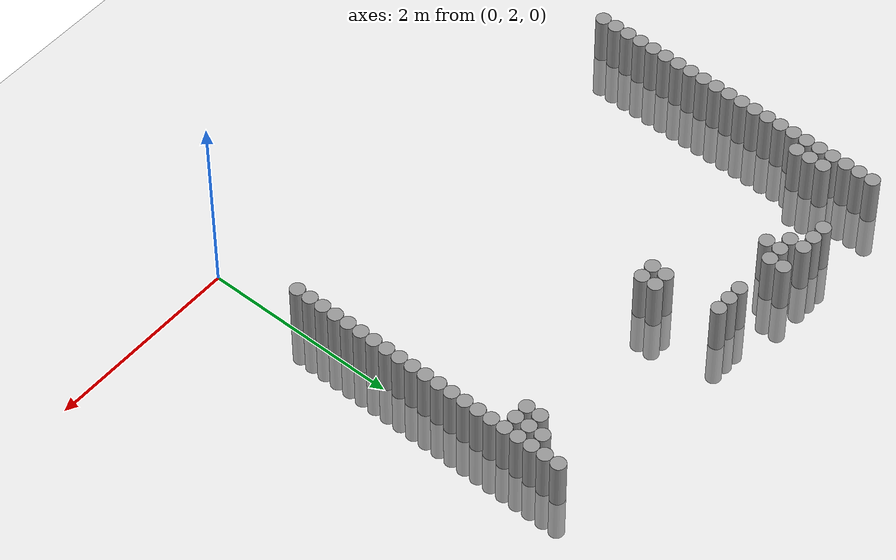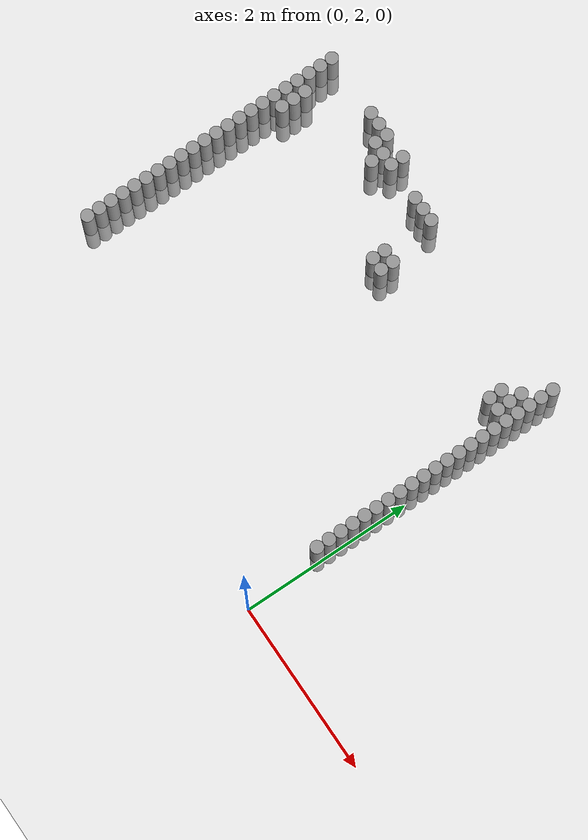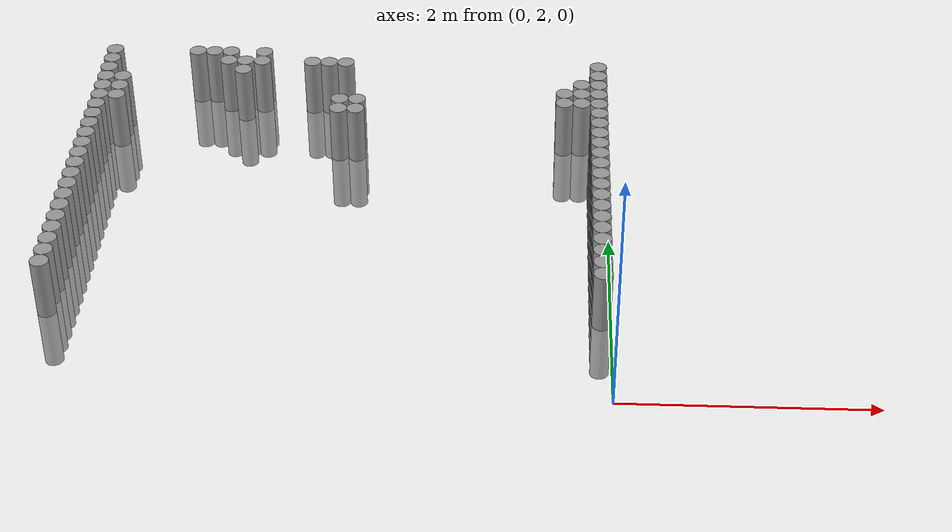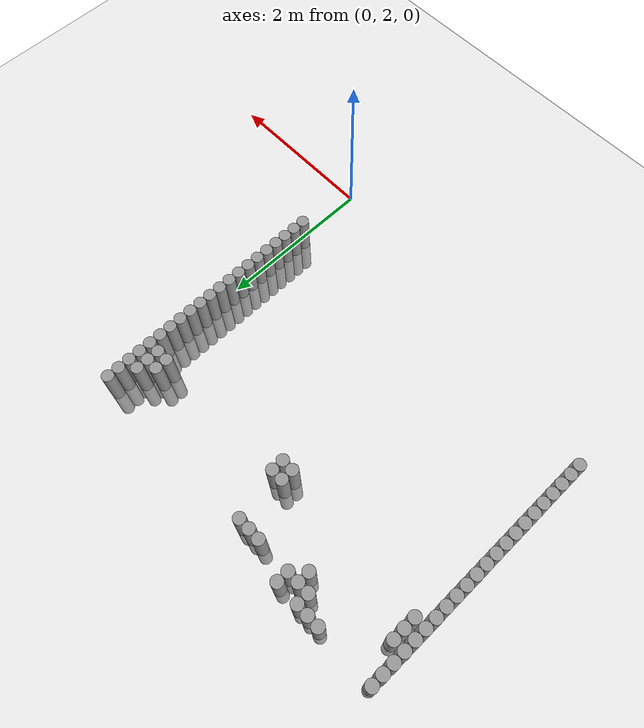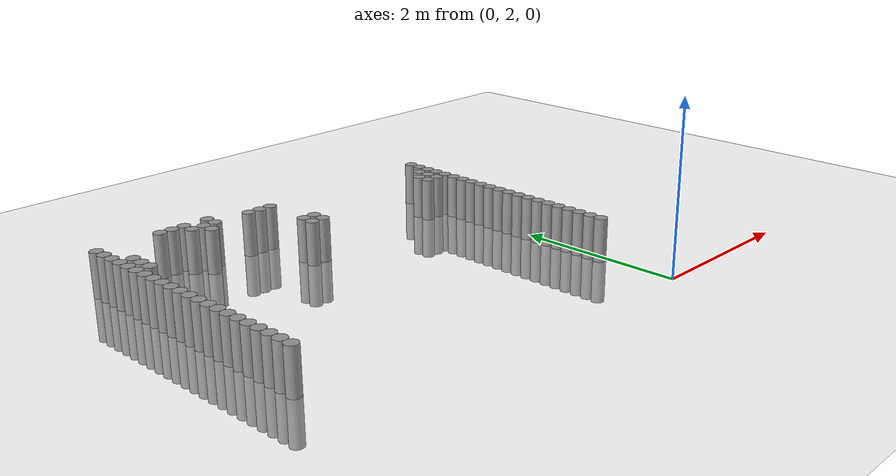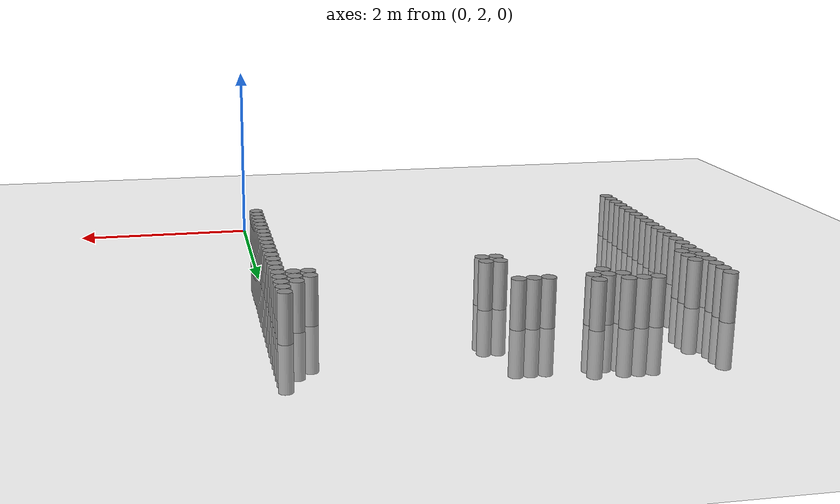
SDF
<sdf version="1.6">
 <world name="default">
  <model name="ground_plane">
   <static>1</static>
   <link name="link">
    <collision name="collision">
     <geometry><plane><normal>0 0 1</normal><size>100 100</size></plane></geometry>
     <surface><friction><ode><mu>100</mu><mu2>50</mu2></ode></friction></surface>
    </collision>
    <visual name="visual">
     <cast_shadows>0</cast_shadows>
     <geometry><plane><normal>0 0 1</normal><size>100 100</size></plane></geometry>
     <material>
      <script><uri>file://media/materials/scripts/gazebo.material</uri><name>Gazebo/Grey</name></script>
     </material>
    </visual>
   </link>
  </model>
  <model name="unit_cylinder_66">
   <pose>-0.075000 2.925000 0.000000 0.000000 0.000000 0.000000</pose>
   <link name="link">
    <inertial>
     <mass>1</mass>
     <inertia><ixx>0.145833</ixx><ixy>0</ixy><ixz>0</ixz><iyy>0.145833</iyy><iyz>0</iyz><izz>0.125</izz></inertia>
    </inertial>
    <collision name="collision">
     <geometry><cylinder><radius>0.075000</radius><length>1</length></cylinder></geometry>
    </collision>
    <visual name="visual">
     <geometry><cylinder><radius>0.075000</radius><length>1</length></cylinder></geometry>
     <material>
      <script><name>Gazebo/Grey</name><uri>file://media/materials/scripts/gazebo.material</uri></script>
     </material>
    </visual>
   </link>
  </model>
  <model name="unit_cylinder_67">
   <pose>-4.425000 2.925000 0.000000 0.000000 0.000000 0.000000</pose>
   <link name="link">
    <inertial>
     <mass>1</mass>
     <inertia><ixx>0.145833</ixx><ixy>0</ixy><ixz>0</ixz><iyy>0.145833</iyy><iyz>0</iyz><izz>0.125</izz></inertia>
    </inertial>
    <collision name="collision">
     <geometry><cylinder><radius>0.075000</radius><length>1</length></cylinder></geometry>
    </collision>
    <visual name="visual">
     <geometry><cylinder><radius>0.075000</radius><length>1</length></cylinder></geometry>
     <material>
      <script><name>Gazebo/Grey</name><uri>file://media/materials/scripts/gazebo.material</uri></script>
     </material>
    </visual>
   </link>
  </model>
  <model name="unit_cylinder_68">
   <pose>-0.075000 3.075000 0.000000 0.000000 0.000000 0.000000</pose>
   <link name="link">
    <inertial>
     <mass>1</mass>
     <inertia><ixx>0.145833</ixx><ixy>0</ixy><ixz>0</ixz><iyy>0.145833</iyy><iyz>0</iyz><izz>0.125</izz></inertia>
    </inertial>
    <collision name="collision">
     <geometry><cylinder><radius>0.075000</radius><length>1</length></cylinder></geometry>
    </collision>
    <visual name="visual">
     <geometry><cylinder><radius>0.075000</radius><length>1</length></cylinder></geometry>
     <material>
      <script><name>Gazebo/Grey</name><uri>file://media/materials/scripts/gazebo.material</uri></script>
     </material>
    </visual>
   </link>
  </model>
  <model name="unit_cylinder_69">
   <pose>-4.425000 3.075000 0.000000 0.000000 0.000000 0.000000</pose>
   <link name="link">
    <inertial>
     <mass>1</mass>
     <inertia><ixx>0.145833</ixx><ixy>0</ixy><ixz>0</ixz><iyy>0.145833</iyy><iyz>0</iyz><izz>0.125</izz></inertia>
    </inertial>
    <collision name="collision">
     <geometry><cylinder><radius>0.075000</radius><length>1</length></cylinder></geometry>
    </collision>
    <visual name="visual">
     <geometry><cylinder><radius>0.075000</radius><length>1</length></cylinder></geometry>
     <material>
      <script><name>Gazebo/Grey</name><uri>file://media/materials/scripts/gazebo.material</uri></script>
     </material>
    </visual>
   </link>
  </model>
  <model name="unit_cylinder_70">
   <pose>-0.075000 3.225000 0.000000 0.000000 0.000000 0.000000</pose>
   <link name="link">
    <inertial>
     <mass>1</mass>
     <inertia><ixx>0.145833</ixx><ixy>0</ixy><ixz>0</ixz><iyy>0.145833</iyy><iyz>0</iyz><izz>0.125</izz></inertia>
    </inertial>
    <collision name="collision">
     <geometry><cylinder><radius>0.075000</radius><length>1</length></cylinder></geometry>
    </collision>
    <visual name="visual">
     <geometry><cylinder><radius>0.075000</radius><length>1</length></cylinder></geometry>
     <material>
      <script><name>Gazebo/Grey</name><uri>file://media/materials/scripts/gazebo.material</uri></script>
     </material>
    </visual>
   </link>
  </model>
  <model name="unit_cylinder_71">
   <pose>-4.425000 3.225000 0.000000 0.000000 0.000000 0.000000</pose>
   <link name="link">
    <inertial>
     <mass>1</mass>
     <inertia><ixx>0.145833</ixx><ixy>0</ixy><ixz>0</ixz><iyy>0.145833</iyy><iyz>0</iyz><izz>0.125</izz></inertia>
    </inertial>
    <collision name="collision">
     <geometry><cylinder><radius>0.075000</radius><length>1</length></cylinder></geometry>
    </collision>
    <visual name="visual">
     <geometry><cylinder><radius>0.075000</radius><length>1</length></cylinder></geometry>
     <material>
      <script><name>Gazebo/Grey</name><uri>file://media/materials/scripts/gazebo.material</uri></script>
     </material>
    </visual>
   </link>
  </model>
  <model name="unit_cylinder_72">
   <pose>-0.075000 3.375000 0.000000 0.000000 0.000000 0.000000</pose>
   <link name="link">
    <inertial>
     <mass>1</mass>
     <inertia><ixx>0.145833</ixx><ixy>0</ixy><ixz>0</ixz><iyy>0.145833</iyy><iyz>0</iyz><izz>0.125</izz></inertia>
    </inertial>
    <collision name="collision">
     <geometry><cylinder><radius>0.075000</radius><length>1</length></cylinder></geometry>
    </collision>
    <visual name="visual">
     <geometry><cylinder><radius>0.075000</radius><length>1</length></cylinder></geometry>
     <material>
      <script><name>Gazebo/Grey</name><uri>file://media/materials/scripts/gazebo.material</uri></script>
     </material>
    </visual>
   </link>
  </model>
  <model name="unit_cylinder_73">
   <pose>-4.425000 3.375000 0.000000 0.000000 0.000000 0.000000</pose>
   <link name="link">
    <inertial>
     <mass>1</mass>
     <inertia><ixx>0.145833</ixx><ixy>0</ixy><ixz>0</ixz><iyy>0.145833</iyy><iyz>0</iyz><izz>0.125</izz></inertia>
    </inertial>
    <collision name="collision">
     <geometry><cylinder><radius>0.075000</radius><length>1</length></cylinder></geometry>
    </collision>
    <visual name="visual">
     <geometry><cylinder><radius>0.075000</radius><length>1</length></cylinder></geometry>
     <material>
      <script><name>Gazebo/Grey</name><uri>file://media/materials/scripts/gazebo.material</uri></script>
     </material>
    </visual>
   </link>
  </model>
  <model name="unit_cylinder_74">
   <pose>-0.075000 3.525000 0.000000 0.000000 0.000000 0.000000</pose>
   <link name="link">
    <inertial>
     <mass>1</mass>
     <inertia><ixx>0.145833</ixx><ixy>0</ixy><ixz>0</ixz><iyy>0.145833</iyy><iyz>0</iyz><izz>0.125</izz></inertia>
    </inertial>
    <collision name="collision">
     <geometry><cylinder><radius>0.075000</radius><length>1</length></cylinder></geometry>
    </collision>
    <visual name="visual">
     <geometry><cylinder><radius>0.075000</radius><length>1</length></cylinder></geometry>
     <material>
      <script><name>Gazebo/Grey</name><uri>file://media/materials/scripts/gazebo.material</uri></script>
     </material>
    </visual>
   </link>
  </model>
  <model name="unit_cylinder_75">
   <pose>-4.425000 3.525000 0.000000 0.000000 0.000000 0.000000</pose>
   <link name="link">
    <inertial>
     <mass>1</mass>
     <inertia><ixx>0.145833</ixx><ixy>0</ixy><ixz>0</ixz><iyy>0.145833</iyy><iyz>0</iyz><izz>0.125</izz></inertia>
    </inertial>
    <collision name="collision">
     <geometry><cylinder><radius>0.075000</radius><length>1</length></cylinder></geometry>
    </collision>
    <visual name="visual">
     <geometry><cylinder><radius>0.075000</radius><length>1</length></cylinder></geometry>
     <material>
      <script><name>Gazebo/Grey</name><uri>file://media/materials/scripts/gazebo.material</uri></script>
     </material>
    </visual>
   </link>
  </model>
  <model name="unit_cylinder_76">
   <pose>-0.075000 3.675000 0.000000 0.000000 0.000000 0.000000</pose>
   <link name="link">
    <inertial>
     <mass>1</mass>
     <inertia><ixx>0.145833</ixx><ixy>0</ixy><ixz>0</ixz><iyy>0.145833</iyy><iyz>0</iyz><izz>0.125</izz></inertia>
    </inertial>
    <collision name="collision">
     <geometry><cylinder><radius>0.075000</radius><length>1</length></cylinder></geometry>
    </collision>
    <visual name="visual">
     <geometry><cylinder><radius>0.075000</radius><length>1</length></cylinder></geometry>
     <material>
      <script><name>Gazebo/Grey</name><uri>file://media/materials/scripts/gazebo.material</uri></script>
     </material>
    </visual>
   </link>
  </model>
  <model name="unit_cylinder_77">
   <pose>-4.425000 3.675000 0.000000 0.000000 0.000000 0.000000</pose>
   <link name="link">
    <inertial>
     <mass>1</mass>
     <inertia><ixx>0.145833</ixx><ixy>0</ixy><ixz>0</ixz><iyy>0.145833</iyy><iyz>0</iyz><izz>0.125</izz></inertia>
    </inertial>
    <collision name="collision">
     <geometry><cylinder><radius>0.075000</radius><length>1</length></cylinder></geometry>
    </collision>
    <visual name="visual">
     <geometry><cylinder><radius>0.075000</radius><length>1</length></cylinder></geometry>
     <material>
      <script><name>Gazebo/Grey</name><uri>file://media/materials/scripts/gazebo.material</uri></script>
     </material>
    </visual>
   </link>
  </model>
  <model name="unit_cylinder_78">
   <pose>-0.075000 3.825000 0.000000 0.000000 0.000000 0.000000</pose>
   <link name="link">
    <inertial>
     <mass>1</mass>
     <inertia><ixx>0.145833</ixx><ixy>0</ixy><ixz>0</ixz><iyy>0.145833</iyy><iyz>0</iyz><izz>0.125</izz></inertia>
    </inertial>
    <collision name="collision">
     <geometry><cylinder><radius>0.075000</radius><length>1</length></cylinder></geometry>
    </collision>
    <visual name="visual">
     <geometry><cylinder><radius>0.075000</radius><length>1</length></cylinder></geometry>
     <material>
      <script><name>Gazebo/Grey</name><uri>file://media/materials/scripts/gazebo.material</uri></script>
     </material>
    </visual>
   </link>
  </model>
  <model name="unit_cylinder_79">
   <pose>-4.425000 3.825000 0.000000 0.000000 0.000000 0.000000</pose>
   <link name="link">
    <inertial>
     <mass>1</mass>
     <inertia><ixx>0.145833</ixx><ixy>0</ixy><ixz>0</ixz><iyy>0.145833</iyy><iyz>0</iyz><izz>0.125</izz></inertia>
    </inertial>
    <collision name="collision">
     <geometry><cylinder><radius>0.075000</radius><length>1</length></cylinder></geometry>
    </collision>
    <visual name="visual">
     <geometry><cylinder><radius>0.075000</radius><length>1</length></cylinder></geometry>
     <material>
      <script><name>Gazebo/Grey</name><uri>file://media/materials/scripts/gazebo.material</uri></script>
     </material>
    </visual>
   </link>
  </model>
  <model name="unit_cylinder_80">
   <pose>-0.075000 3.975000 0.000000 0.000000 0.000000 0.000000</pose>
   <link name="link">
    <inertial>
     <mass>1</mass>
     <inertia><ixx>0.145833</ixx><ixy>0</ixy><ixz>0</ixz><iyy>0.145833</iyy><iyz>0</iyz><izz>0.125</izz></inertia>
    </inertial>
    <collision name="collision">
     <geometry><cylinder><radius>0.075000</radius><length>1</length></cylinder></geometry>
    </collision>
    <visual name="visual">
     <geometry><cylinder><radius>0.075000</radius><length>1</length></cylinder></geometry>
     <material>
      <script><name>Gazebo/Grey</name><uri>file://media/materials/scripts/gazebo.material</uri></script>
     </material>
    </visual>
   </link>
  </model>
  <model name="unit_cylinder_81">
   <pose>-4.425000 3.975000 0.000000 0.000000 0.000000 0.000000</pose>
   <link name="link">
    <inertial>
     <mass>1</mass>
     <inertia><ixx>0.145833</ixx><ixy>0</ixy><ixz>0</ixz><iyy>0.145833</iyy><iyz>0</iyz><izz>0.125</izz></inertia>
    </inertial>
    <collision name="collision">
     <geometry><cylinder><radius>0.075000</radius><length>1</length></cylinder></geometry>
    </collision>
    <visual name="visual">
     <geometry><cylinder><radius>0.075000</radius><length>1</length></cylinder></geometry>
     <material>
      <script><name>Gazebo/Grey</name><uri>file://media/materials/scripts/gazebo.material</uri></script>
     </material>
    </visual>
   </link>
  </model>
  <model name="unit_cylinder_82">
   <pose>-0.075000 4.125000 0.000000 0.000000 0.000000 0.000000</pose>
   <link name="link">
    <inertial>
     <mass>1</mass>
     <inertia><ixx>0.145833</ixx><ixy>0</ixy><ixz>0</ixz><iyy>0.145833</iyy><iyz>0</iyz><izz>0.125</izz></inertia>
    </inertial>
    <collision name="collision">
     <geometry><cylinder><radius>0.075000</radius><length>1</length></cylinder></geometry>
    </collision>
    <visual name="visual">
     <geometry><cylinder><radius>0.075000</radius><length>1</length></cylinder></geometry>
     <material>
      <script><name>Gazebo/Grey</name><uri>file://media/materials/scripts/gazebo.material</uri></script>
     </material>
    </visual>
   </link>
  </model>
  <model name="unit_cylinder_83">
   <pose>-4.425000 4.125000 0.000000 0.000000 0.000000 0.000000</pose>
   <link name="link">
    <inertial>
     <mass>1</mass>
     <inertia><ixx>0.145833</ixx><ixy>0</ixy><ixz>0</ixz><iyy>0.145833</iyy><iyz>0</iyz><izz>0.125</izz></inertia>
    </inertial>
    <collision name="collision">
     <geometry><cylinder><radius>0.075000</radius><length>1</length></cylinder></geometry>
    </collision>
    <visual name="visual">
     <geometry><cylinder><radius>0.075000</radius><length>1</length></cylinder></geometry>
     <material>
      <script><name>Gazebo/Grey</name><uri>file://media/materials/scripts/gazebo.material</uri></script>
     </material>
    </visual>
   </link>
  </model>
  <model name="unit_cylinder_84">
   <pose>-0.075000 4.275000 0.000000 0.000000 0.000000 0.000000</pose>
   <link name="link">
    <inertial>
     <mass>1</mass>
     <inertia><ixx>0.145833</ixx><ixy>0</ixy><ixz>0</ixz><iyy>0.145833</iyy><iyz>0</iyz><izz>0.125</izz></inertia>
    </inertial>
    <collision name="collision">
     <geometry><cylinder><radius>0.075000</radius><length>1</length></cylinder></geometry>
    </collision>
    <visual name="visual">
     <geometry><cylinder><radius>0.075000</radius><length>1</length></cylinder></geometry>
     <material>
      <script><name>Gazebo/Grey</name><uri>file://media/materials/scripts/gazebo.material</uri></script>
     </material>
    </visual>
   </link>
  </model>
  <model name="unit_cylinder_85">
   <pose>-4.425000 4.275000 0.000000 0.000000 0.000000 0.000000</pose>
   <link name="link">
    <inertial>
     <mass>1</mass>
     <inertia><ixx>0.145833</ixx><ixy>0</ixy><ixz>0</ixz><iyy>0.145833</iyy><iyz>0</iyz><izz>0.125</izz></inertia>
    </inertial>
    <collision name="collision">
     <geometry><cylinder><radius>0.075000</radius><length>1</length></cylinder></geometry>
    </collision>
    <visual name="visual">
     <geometry><cylinder><radius>0.075000</radius><length>1</length></cylinder></geometry>
     <material>
      <script><name>Gazebo/Grey</name><uri>file://media/materials/scripts/gazebo.material</uri></script>
     </material>
    </visual>
   </link>
  </model>
  <model name="unit_cylinder_86">
   <pose>-0.075000 4.425000 0.000000 0.000000 0.000000 0.000000</pose>
   <link name="link">
    <inertial>
     <mass>1</mass>
     <inertia><ixx>0.145833</ixx><ixy>0</ixy><ixz>0</ixz><iyy>0.145833</iyy><iyz>0</iyz><izz>0.125</izz></inertia>
    </inertial>
    <collision name="collision">
     <geometry><cylinder><radius>0.075000</radius><length>1</length></cylinder></geometry>
    </collision>
    <visual name="visual">
     <geometry><cylinder><radius>0.075000</radius><length>1</length></cylinder></geometry>
     <material>
      <script><name>Gazebo/Grey</name><uri>file://media/materials/scripts/gazebo.material</uri></script>
     </material>
    </visual>
   </link>
  </model>
  <model name="unit_cylinder_87">
   <pose>-4.425000 4.425000 0.000000 0.000000 0.000000 0.000000</pose>
   <link name="link">
    <inertial>
     <mass>1</mass>
     <inertia><ixx>0.145833</ixx><ixy>0</ixy><ixz>0</ixz><iyy>0.145833</iyy><iyz>0</iyz><izz>0.125</izz></inertia>
    </inertial>
    <collision name="collision">
     <geometry><cylinder><radius>0.075000</radius><length>1</length></cylinder></geometry>
    </collision>
    <visual name="visual">
     <geometry><cylinder><radius>0.075000</radius><length>1</length></cylinder></geometry>
     <material>
      <script><name>Gazebo/Grey</name><uri>file://media/materials/scripts/gazebo.material</uri></script>
     </material>
    </visual>
   </link>
  </model>
  <model name="unit_cylinder_88">
   <pose>-0.075000 4.575000 0.000000 0.000000 0.000000 0.000000</pose>
   <link name="link">
    <inertial>
     <mass>1</mass>
     <inertia><ixx>0.145833</ixx><ixy>0</ixy><ixz>0</ixz><iyy>0.145833</iyy><iyz>0</iyz><izz>0.125</izz></inertia>
    </inertial>
    <collision name="collision">
     <geometry><cylinder><radius>0.075000</radius><length>1</length></cylinder></geometry>
    </collision>
    <visual name="visual">
     <geometry><cylinder><radius>0.075000</radius><length>1</length></cylinder></geometry>
     <material>
      <script><name>Gazebo/Grey</name><uri>file://media/materials/scripts/gazebo.material</uri></script>
     </material>
    </visual>
   </link>
  </model>
  <model name="unit_cylinder_89">
   <pose>-4.425000 4.575000 0.000000 0.000000 0.000000 0.000000</pose>
   <link name="link">
    <inertial>
     <mass>1</mass>
     <inertia><ixx>0.145833</ixx><ixy>0</ixy><ixz>0</ixz><iyy>0.145833</iyy><iyz>0</iyz><izz>0.125</izz></inertia>
    </inertial>
    <collision name="collision">
     <geometry><cylinder><radius>0.075000</radius><length>1</length></cylinder></geometry>
    </collision>
    <visual name="visual">
     <geometry><cylinder><radius>0.075000</radius><length>1</length></cylinder></geometry>
     <material>
      <script><name>Gazebo/Grey</name><uri>file://media/materials/scripts/gazebo.material</uri></script>
     </material>
    </visual>
   </link>
  </model>
  <model name="unit_cylinder_90">
   <pose>-0.075000 4.725000 0.000000 0.000000 0.000000 0.000000</pose>
   <link name="link">
    <inertial>
     <mass>1</mass>
     <inertia><ixx>0.145833</ixx><ixy>0</ixy><ixz>0</ixz><iyy>0.145833</iyy><iyz>0</iyz><izz>0.125</izz></inertia>
    </inertial>
    <collision name="collision">
     <geometry><cylinder><radius>0.075000</radius><length>1</length></cylinder></geometry>
    </collision>
    <visual name="visual">
     <geometry><cylinder><radius>0.075000</radius><length>1</length></cylinder></geometry>
     <material>
      <script><name>Gazebo/Grey</name><uri>file://media/materials/scripts/gazebo.material</uri></script>
     </material>
    </visual>
   </link>
  </model>
  <model name="unit_cylinder_91">
   <pose>-4.425000 4.725000 0.000000 0.000000 0.000000 0.000000</pose>
   <link name="link">
    <inertial>
     <mass>1</mass>
     <inertia><ixx>0.145833</ixx><ixy>0</ixy><ixz>0</ixz><iyy>0.145833</iyy><iyz>0</iyz><izz>0.125</izz></inertia>
    </inertial>
    <collision name="collision">
     <geometry><cylinder><radius>0.075000</radius><length>1</length></cylinder></geometry>
    </collision>
    <visual name="visual">
     <geometry><cylinder><radius>0.075000</radius><length>1</length></cylinder></geometry>
     <material>
      <script><name>Gazebo/Grey</name><uri>file://media/materials/scripts/gazebo.material</uri></script>
     </material>
    </visual>
   </link>
  </model>
  <model name="unit_cylinder_92">
   <pose>-0.075000 4.875000 0.000000 0.000000 0.000000 0.000000</pose>
   <link name="link">
    <inertial>
     <mass>1</mass>
     <inertia><ixx>0.145833</ixx><ixy>0</ixy><ixz>0</ixz><iyy>0.145833</iyy><iyz>0</iyz><izz>0.125</izz></inertia>
    </inertial>
    <collision name="collision">
     <geometry><cylinder><radius>0.075000</radius><length>1</length></cylinder></geometry>
    </collision>
    <visual name="visual">
     <geometry><cylinder><radius>0.075000</radius><length>1</length></cylinder></geometry>
     <material>
      <script><name>Gazebo/Grey</name><uri>file://media/materials/scripts/gazebo.material</uri></script>
     </material>
    </visual>
   </link>
  </model>
  <model name="unit_cylinder_93">
   <pose>-4.425000 4.875000 0.000000 0.000000 0.000000 0.000000</pose>
   <link name="link">
    <inertial>
     <mass>1</mass>
     <inertia><ixx>0.145833</ixx><ixy>0</ixy><ixz>0</ixz><iyy>0.145833</iyy><iyz>0</iyz><izz>0.125</izz></inertia>
    </inertial>
    <collision name="collision">
     <geometry><cylinder><radius>0.075000</radius><length>1</length></cylinder></geometry>
    </collision>
    <visual name="visual">
     <geometry><cylinder><radius>0.075000</radius><length>1</length></cylinder></geometry>
     <material>
      <script><name>Gazebo/Grey</name><uri>file://media/materials/scripts/gazebo.material</uri></script>
     </material>
    </visual>
   </link>
  </model>
  <model name="unit_cylinder_94">
   <pose>-0.075000 5.025000 0.000000 0.000000 0.000000 0.000000</pose>
   <link name="link">
    <inertial>
     <mass>1</mass>
     <inertia><ixx>0.145833</ixx><ixy>0</ixy><ixz>0</ixz><iyy>0.145833</iyy><iyz>0</iyz><izz>0.125</izz></inertia>
    </inertial>
    <collision name="collision">
     <geometry><cylinder><radius>0.075000</radius><length>1</length></cylinder></geometry>
    </collision>
    <visual name="visual">
     <geometry><cylinder><radius>0.075000</radius><length>1</length></cylinder></geometry>
     <material>
      <script><name>Gazebo/Grey</name><uri>file://media/materials/scripts/gazebo.material</uri></script>
     </material>
    </visual>
   </link>
  </model>
  <model name="unit_cylinder_95">
   <pose>-4.425000 5.025000 0.000000 0.000000 0.000000 0.000000</pose>
   <link name="link">
    <inertial>
     <mass>1</mass>
     <inertia><ixx>0.145833</ixx><ixy>0</ixy><ixz>0</ixz><iyy>0.145833</iyy><iyz>0</iyz><izz>0.125</izz></inertia>
    </inertial>
    <collision name="collision">
     <geometry><cylinder><radius>0.075000</radius><length>1</length></cylinder></geometry>
    </collision>
    <visual name="visual">
     <geometry><cylinder><radius>0.075000</radius><length>1</length></cylinder></geometry>
     <material>
      <script><name>Gazebo/Grey</name><uri>file://media/materials/scripts/gazebo.material</uri></script>
     </material>
    </visual>
   </link>
  </model>
  <model name="unit_cylinder_96">
   <pose>-4.425000 5.175000 0.000000 0.000000 0.000000 0.000000</pose>
   <link name="link">
    <inertial>
     <mass>1</mass>
     <inertia><ixx>0.145833</ixx><ixy>0</ixy><ixz>0</ixz><iyy>0.145833</iyy><iyz>0</iyz><izz>0.125</izz></inertia>
    </inertial>
    <collision name="collision">
     <geometry><cylinder><radius>0.075000</radius><length>1</length></cylinder></geometry>
    </collision>
    <visual name="visual">
     <geometry><cylinder><radius>0.075000</radius><length>1</length></cylinder></geometry>
     <material>
      <script><name>Gazebo/Grey</name><uri>file://media/materials/scripts/gazebo.material</uri></script>
     </material>
    </visual>
   </link>
  </model>
  <model name="unit_cylinder_97">
   <pose>-4.425000 5.325000 0.000000 0.000000 0.000000 0.000000</pose>
   <link name="link">
    <inertial>
     <mass>1</mass>
     <inertia><ixx>0.145833</ixx><ixy>0</ixy><ixz>0</ixz><iyy>0.145833</iyy><iyz>0</iyz><izz>0.125</izz></inertia>
    </inertial>
    <collision name="collision">
     <geometry><cylinder><radius>0.075000</radius><length>1</length></cylinder></geometry>
    </collision>
    <visual name="visual">
     <geometry><cylinder><radius>0.075000</radius><length>1</length></cylinder></geometry>
     <material>
      <script><name>Gazebo/Grey</name><uri>file://media/materials/scripts/gazebo.material</uri></script>
     </material>
    </visual>
   </link>
  </model>
  <model name="unit_cylinder_98">
   <pose>-4.425000 5.475000 0.000000 0.000000 0.000000 0.000000</pose>
   <link name="link">
    <inertial>
     <mass>1</mass>
     <inertia><ixx>0.145833</ixx><ixy>0</ixy><ixz>0</ixz><iyy>0.145833</iyy><iyz>0</iyz><izz>0.125</izz></inertia>
    </inertial>
    <collision name="collision">
     <geometry><cylinder><radius>0.075000</radius><length>1</length></cylinder></geometry>
    </collision>
    <visual name="visual">
     <geometry><cylinder><radius>0.075000</radius><length>1</length></cylinder></geometry>
     <material>
      <script><name>Gazebo/Grey</name><uri>file://media/materials/scripts/gazebo.material</uri></script>
     </material>
    </visual>
   </link>
  </model>
  <model name="unit_cylinder_99">
   <pose>-4.425000 5.625000 0.000000 0.000000 0.000000 0.000000</pose>
   <link name="link">
    <inertial>
     <mass>1</mass>
     <inertia><ixx>0.145833</ixx><ixy>0</ixy><ixz>0</ixz><iyy>0.145833</iyy><iyz>0</iyz><izz>0.125</izz></inertia>
    </inertial>
    <collision name="collision">
     <geometry><cylinder><radius>0.075000</radius><length>1</length></cylinder></geometry>
    </collision>
    <visual name="visual">
     <geometry><cylinder><radius>0.075000</radius><length>1</length></cylinder></geometry>
     <material>
      <script><name>Gazebo/Grey</name><uri>file://media/materials/scripts/gazebo.material</uri></script>
     </material>
    </visual>
   </link>
  </model>
  <model name="unit_cylinder_100">
   <pose>-4.425000 5.775000 0.000000 0.000000 0.000000 0.000000</pose>
   <link name="link">
    <inertial>
     <mass>1</mass>
     <inertia><ixx>0.145833</ixx><ixy>0</ixy><ixz>0</ixz><iyy>0.145833</iyy><iyz>0</iyz><izz>0.125</izz></inertia>
    </inertial>
    <collision name="collision">
     <geometry><cylinder><radius>0.075000</radius><length>1</length></cylinder></geometry>
    </collision>
    <visual name="visual">
     <geometry><cylinder><radius>0.075000</radius><length>1</length></cylinder></geometry>
     <material>
      <script><name>Gazebo/Grey</name><uri>file://media/materials/scripts/gazebo.material</uri></script>
     </material>
    </visual>
   </link>
  </model>
  <model name="unit_cylinder_101">
   <pose>-4.425000 5.925000 0.000000 0.000000 0.000000 0.000000</pose>
   <link name="link">
    <inertial>
     <mass>1</mass>
     <inertia><ixx>0.145833</ixx><ixy>0</ixy><ixz>0</ixz><iyy>0.145833</iyy><iyz>0</iyz><izz>0.125</izz></inertia>
    </inertial>
    <collision name="collision">
     <geometry><cylinder><radius>0.075000</radius><length>1</length></cylinder></geometry>
    </collision>
    <visual name="visual">
     <geometry><cylinder><radius>0.075000</radius><length>1</length></cylinder></geometry>
     <material>
      <script><name>Gazebo/Grey</name><uri>file://media/materials/scripts/gazebo.material</uri></script>
     </material>
    </visual>
   </link>
  </model>
  <model name="unit_cylinder_102">
   <pose>-4.425000 6.075000 0.000000 0.000000 0.000000 0.000000</pose>
   <link name="link">
    <inertial>
     <mass>1</mass>
     <inertia><ixx>0.145833</ixx><ixy>0</ixy><ixz>0</ixz><iyy>0.145833</iyy><iyz>0</iyz><izz>0.125</izz></inertia>
    </inertial>
    <collision name="collision">
     <geometry><cylinder><radius>0.075000</radius><length>1</length></cylinder></geometry>
    </collision>
    <visual name="visual">
     <geometry><cylinder><radius>0.075000</radius><length>1</length></cylinder></geometry>
     <material>
      <script><name>Gazebo/Grey</name><uri>file://media/materials/scripts/gazebo.material</uri></script>
     </material>
    </visual>
   </link>
  </model>
  <model name="unit_cylinder_126">
   <pose>-4.275000 5.325000 0.000000 0.000000 0.000000 0.000000</pose>
   <link name="link">
    <inertial>
     <mass>1</mass>
     <inertia><ixx>0.145833</ixx><ixy>0</ixy><ixz>0</ixz><iyy>0.145833</iyy><iyz>0</iyz><izz>0.125</izz></inertia>
    </inertial>
    <collision name="collision">
     <geometry><cylinder><radius>0.075000</radius><length>1</length></cylinder></geometry>
    </collision>
    <visual name="visual">
     <geometry><cylinder><radius>0.075000</radius><length>1</length></cylinder></geometry>
     <material>
      <script><name>Gazebo/Grey</name><uri>file://media/materials/scripts/gazebo.material</uri></script>
     </material>
    </visual>
   </link>
  </model>
  <model name="unit_cylinder_127">
   <pose>-4.275000 5.475000 0.000000 0.000000 0.000000 0.000000</pose>
   <link name="link">
    <inertial>
     <mass>1</mass>
     <inertia><ixx>0.145833</ixx><ixy>0</ixy><ixz>0</ixz><iyy>0.145833</iyy><iyz>0</iyz><izz>0.125</izz></inertia>
    </inertial>
    <collision name="collision">
     <geometry><cylinder><radius>0.075000</radius><length>1</length></cylinder></geometry>
    </collision>
    <visual name="visual">
     <geometry><cylinder><radius>0.075000</radius><length>1</length></cylinder></geometry>
     <material>
      <script><name>Gazebo/Grey</name><uri>file://media/materials/scripts/gazebo.material</uri></script>
     </material>
    </visual>
   </link>
  </model>
  <model name="unit_cylinder_128">
   <pose>-4.275000 5.625000 0.000000 0.000000 0.000000 0.000000</pose>
   <link name="link">
    <inertial>
     <mass>1</mass>
     <inertia><ixx>0.145833</ixx><ixy>0</ixy><ixz>0</ixz><iyy>0.145833</iyy><iyz>0</iyz><izz>0.125</izz></inertia>
    </inertial>
    <collision name="collision">
     <geometry><cylinder><radius>0.075000</radius><length>1</length></cylinder></geometry>
    </collision>
    <visual name="visual">
     <geometry><cylinder><radius>0.075000</radius><length>1</length></cylinder></geometry>
     <material>
      <script><name>Gazebo/Grey</name><uri>file://media/materials/scripts/gazebo.material</uri></script>
     </material>
    </visual>
   </link>
  </model>
  <model name="unit_cylinder_155">
   <pose>-3.675000 6.075000 0.000000 0.000000 0.000000 0.000000</pose>
   <link name="link">
    <inertial>
     <mass>1</mass>
     <inertia><ixx>0.145833</ixx><ixy>0</ixy><ixz>0</ixz><iyy>0.145833</iyy><iyz>0</iyz><izz>0.125</izz></inertia>
    </inertial>
    <collision name="collision">
     <geometry><cylinder><radius>0.075000</radius><length>1</length></cylinder></geometry>
    </collision>
    <visual name="visual">
     <geometry><cylinder><radius>0.075000</radius><length>1</length></cylinder></geometry>
     <material>
      <script><name>Gazebo/Grey</name><uri>file://media/materials/scripts/gazebo.material</uri></script>
     </material>
    </visual>
   </link>
  </model>
  <model name="unit_cylinder_162">
   <pose>-3.525000 6.075000 0.000000 0.000000 0.000000 0.000000</pose>
   <link name="link">
    <inertial>
     <mass>1</mass>
     <inertia><ixx>0.145833</ixx><ixy>0</ixy><ixz>0</ixz><iyy>0.145833</iyy><iyz>0</iyz><izz>0.125</izz></inertia>
    </inertial>
    <collision name="collision">
     <geometry><cylinder><radius>0.075000</radius><length>1</length></cylinder></geometry>
    </collision>
    <visual name="visual">
     <geometry><cylinder><radius>0.075000</radius><length>1</length></cylinder></geometry>
     <material>
      <script><name>Gazebo/Grey</name><uri>file://media/materials/scripts/gazebo.material</uri></script>
     </material>
    </visual>
   </link>
  </model>
  <model name="unit_cylinder_171">
   <pose>-3.375000 5.925000 0.000000 0.000000 0.000000 0.000000</pose>
   <link name="link">
    <inertial>
     <mass>1</mass>
     <inertia><ixx>0.145833</ixx><ixy>0</ixy><ixz>0</ixz><iyy>0.145833</iyy><iyz>0</iyz><izz>0.125</izz></inertia>
    </inertial>
    <collision name="collision">
     <geometry><cylinder><radius>0.075000</radius><length>1</length></cylinder></geometry>
    </collision>
    <visual name="visual">
     <geometry><cylinder><radius>0.075000</radius><length>1</length></cylinder></geometry>
     <material>
      <script><name>Gazebo/Grey</name><uri>file://media/materials/scripts/gazebo.material</uri></script>
     </material>
    </visual>
   </link>
  </model>
  <model name="unit_cylinder_172">
   <pose>-3.375000 6.075000 0.000000 0.000000 0.000000 0.000000</pose>
   <link name="link">
    <inertial>
     <mass>1</mass>
     <inertia><ixx>0.145833</ixx><ixy>0</ixy><ixz>0</ixz><iyy>0.145833</iyy><iyz>0</iyz><izz>0.125</izz></inertia>
    </inertial>
    <collision name="collision">
     <geometry><cylinder><radius>0.075000</radius><length>1</length></cylinder></geometry>
    </collision>
    <visual name="visual">
     <geometry><cylinder><radius>0.075000</radius><length>1</length></cylinder></geometry>
     <material>
      <script><name>Gazebo/Grey</name><uri>file://media/materials/scripts/gazebo.material</uri></script>
     </material>
    </visual>
   </link>
  </model>
  <model name="unit_cylinder_180">
   <pose>-3.225000 5.775000 0.000000 0.000000 0.000000 0.000000</pose>
   <link name="link">
    <inertial>
     <mass>1</mass>
     <inertia><ixx>0.145833</ixx><ixy>0</ixy><ixz>0</ixz><iyy>0.145833</iyy><iyz>0</iyz><izz>0.125</izz></inertia>
    </inertial>
    <collision name="collision">
     <geometry><cylinder><radius>0.075000</radius><length>1</length></cylinder></geometry>
    </collision>
    <visual name="visual">
     <geometry><cylinder><radius>0.075000</radius><length>1</length></cylinder></geometry>
     <material>
      <script><name>Gazebo/Grey</name><uri>file://media/materials/scripts/gazebo.material</uri></script>
     </material>
    </visual>
   </link>
  </model>
  <model name="unit_cylinder_181">
   <pose>-3.225000 5.925000 0.000000 0.000000 0.000000 0.000000</pose>
   <link name="link">
    <inertial>
     <mass>1</mass>
     <inertia><ixx>0.145833</ixx><ixy>0</ixy><ixz>0</ixz><iyy>0.145833</iyy><iyz>0</iyz><izz>0.125</izz></inertia>
    </inertial>
    <collision name="collision">
     <geometry><cylinder><radius>0.075000</radius><length>1</length></cylinder></geometry>
    </collision>
    <visual name="visual">
     <geometry><cylinder><radius>0.075000</radius><length>1</length></cylinder></geometry>
     <material>
      <script><name>Gazebo/Grey</name><uri>file://media/materials/scripts/gazebo.material</uri></script>
     </material>
    </visual>
   </link>
  </model>
  <model name="unit_cylinder_189">
   <pose>-3.075000 5.925000 0.000000 0.000000 0.000000 0.000000</pose>
   <link name="link">
    <inertial>
     <mass>1</mass>
     <inertia><ixx>0.145833</ixx><ixy>0</ixy><ixz>0</ixz><iyy>0.145833</iyy><iyz>0</iyz><izz>0.125</izz></inertia>
    </inertial>
    <collision name="collision">
     <geometry><cylinder><radius>0.075000</radius><length>1</length></cylinder></geometry>
    </collision>
    <visual name="visual">
     <geometry><cylinder><radius>0.075000</radius><length>1</length></cylinder></geometry>
     <material>
      <script><name>Gazebo/Grey</name><uri>file://media/materials/scripts/gazebo.material</uri></script>
     </material>
    </visual>
   </link>
  </model>
  <model name="unit_cylinder_190">
   <pose>-3.075000 6.075000 0.000000 0.000000 0.000000 0.000000</pose>
   <link name="link">
    <inertial>
     <mass>1</mass>
     <inertia><ixx>0.145833</ixx><ixy>0</ixy><ixz>0</ixz><iyy>0.145833</iyy><iyz>0</iyz><izz>0.125</izz></inertia>
    </inertial>
    <collision name="collision">
     <geometry><cylinder><radius>0.075000</radius><length>1</length></cylinder></geometry>
    </collision>
    <visual name="visual">
     <geometry><cylinder><radius>0.075000</radius><length>1</length></cylinder></geometry>
     <material>
      <script><name>Gazebo/Grey</name><uri>file://media/materials/scripts/gazebo.material</uri></script>
     </material>
    </visual>
   </link>
  </model>
  <model name="unit_cylinder_199">
   <pose>-2.625000 5.925000 0.000000 0.000000 0.000000 0.000000</pose>
   <link name="link">
    <inertial>
     <mass>1</mass>
     <inertia><ixx>0.145833</ixx><ixy>0</ixy><ixz>0</ixz><iyy>0.145833</iyy><iyz>0</iyz><izz>0.125</izz></inertia>
    </inertial>
    <collision name="collision">
     <geometry><cylinder><radius>0.075000</radius><length>1</length></cylinder></geometry>
    </collision>
    <visual name="visual">
     <geometry><cylinder><radius>0.075000</radius><length>1</length></cylinder></geometry>
     <material>
      <script><name>Gazebo/Grey</name><uri>file://media/materials/scripts/gazebo.material</uri></script>
     </material>
    </visual>
   </link>
  </model>
  <model name="unit_cylinder_202">
   <pose>-2.475000 5.925000 0.000000 0.000000 0.000000 0.000000</pose>
   <link name="link">
    <inertial>
     <mass>1</mass>
     <inertia><ixx>0.145833</ixx><ixy>0</ixy><ixz>0</ixz><iyy>0.145833</iyy><iyz>0</iyz><izz>0.125</izz></inertia>
    </inertial>
    <collision name="collision">
     <geometry><cylinder><radius>0.075000</radius><length>1</length></cylinder></geometry>
    </collision>
    <visual name="visual">
     <geometry><cylinder><radius>0.075000</radius><length>1</length></cylinder></geometry>
     <material>
      <script><name>Gazebo/Grey</name><uri>file://media/materials/scripts/gazebo.material</uri></script>
     </material>
    </visual>
   </link>
  </model>
  <model name="unit_cylinder_209">
   <pose>-2.325000 5.175000 0.000000 0.000000 0.000000 0.000000</pose>
   <link name="link">
    <inertial>
     <mass>1</mass>
     <inertia><ixx>0.145833</ixx><ixy>0</ixy><ixz>0</ixz><iyy>0.145833</iyy><iyz>0</iyz><izz>0.125</izz></inertia>
    </inertial>
    <collision name="collision">
     <geometry><cylinder><radius>0.075000</radius><length>1</length></cylinder></geometry>
    </collision>
    <visual name="visual">
     <geometry><cylinder><radius>0.075000</radius><length>1</length></cylinder></geometry>
     <material>
      <script><name>Gazebo/Grey</name><uri>file://media/materials/scripts/gazebo.material</uri></script>
     </material>
    </visual>
   </link>
  </model>
  <model name="unit_cylinder_210">
   <pose>-2.325000 5.325000 0.000000 0.000000 0.000000 0.000000</pose>
   <link name="link">
    <inertial>
     <mass>1</mass>
     <inertia><ixx>0.145833</ixx><ixy>0</ixy><ixz>0</ixz><iyy>0.145833</iyy><iyz>0</iyz><izz>0.125</izz></inertia>
    </inertial>
    <collision name="collision">
     <geometry><cylinder><radius>0.075000</radius><length>1</length></cylinder></geometry>
    </collision>
    <visual name="visual">
     <geometry><cylinder><radius>0.075000</radius><length>1</length></cylinder></geometry>
     <material>
      <script><name>Gazebo/Grey</name><uri>file://media/materials/scripts/gazebo.material</uri></script>
     </material>
    </visual>
   </link>
  </model>
  <model name="unit_cylinder_211">
   <pose>-2.325000 5.925000 0.000000 0.000000 0.000000 0.000000</pose>
   <link name="link">
    <inertial>
     <mass>1</mass>
     <inertia><ixx>0.145833</ixx><ixy>0</ixy><ixz>0</ixz><iyy>0.145833</iyy><iyz>0</iyz><izz>0.125</izz></inertia>
    </inertial>
    <collision name="collision">
     <geometry><cylinder><radius>0.075000</radius><length>1</length></cylinder></geometry>
    </collision>
    <visual name="visual">
     <geometry><cylinder><radius>0.075000</radius><length>1</length></cylinder></geometry>
     <material>
      <script><name>Gazebo/Grey</name><uri>file://media/materials/scripts/gazebo.material</uri></script>
     </material>
    </visual>
   </link>
  </model>
  <model name="unit_cylinder_217">
   <pose>-2.175000 5.175000 0.000000 0.000000 0.000000 0.000000</pose>
   <link name="link">
    <inertial>
     <mass>1</mass>
     <inertia><ixx>0.145833</ixx><ixy>0</ixy><ixz>0</ixz><iyy>0.145833</iyy><iyz>0</iyz><izz>0.125</izz></inertia>
    </inertial>
    <collision name="collision">
     <geometry><cylinder><radius>0.075000</radius><length>1</length></cylinder></geometry>
    </collision>
    <visual name="visual">
     <geometry><cylinder><radius>0.075000</radius><length>1</length></cylinder></geometry>
     <material>
      <script><name>Gazebo/Grey</name><uri>file://media/materials/scripts/gazebo.material</uri></script>
     </material>
    </visual>
   </link>
  </model>
  <model name="unit_cylinder_218">
   <pose>-2.175000 5.325000 0.000000 0.000000 0.000000 0.000000</pose>
   <link name="link">
    <inertial>
     <mass>1</mass>
     <inertia><ixx>0.145833</ixx><ixy>0</ixy><ixz>0</ixz><iyy>0.145833</iyy><iyz>0</iyz><izz>0.125</izz></inertia>
    </inertial>
    <collision name="collision">
     <geometry><cylinder><radius>0.075000</radius><length>1</length></cylinder></geometry>
    </collision>
    <visual name="visual">
     <geometry><cylinder><radius>0.075000</radius><length>1</length></cylinder></geometry>
     <material>
      <script><name>Gazebo/Grey</name><uri>file://media/materials/scripts/gazebo.material</uri></script>
     </material>
    </visual>
   </link>
  </model>
  <model name="unit_cylinder_276">
   <pose>-0.375000 5.325000 0.000000 0.000000 0.000000 0.000000</pose>
   <link name="link">
    <inertial>
     <mass>1</mass>
     <inertia><ixx>0.145833</ixx><ixy>0</ixy><ixz>0</ixz><iyy>0.145833</iyy><iyz>0</iyz><izz>0.125</izz></inertia>
    </inertial>
    <collision name="collision">
     <geometry><cylinder><radius>0.075000</radius><length>1</length></cylinder></geometry>
    </collision>
    <visual name="visual">
     <geometry><cylinder><radius>0.075000</radius><length>1</length></cylinder></geometry>
     <material>
      <script><name>Gazebo/Grey</name><uri>file://media/materials/scripts/gazebo.material</uri></script>
     </material>
    </visual>
   </link>
  </model>
  <model name="unit_cylinder_277">
   <pose>-0.375000 5.475000 0.000000 0.000000 0.000000 0.000000</pose>
   <link name="link">
    <inertial>
     <mass>1</mass>
     <inertia><ixx>0.145833</ixx><ixy>0</ixy><ixz>0</ixz><iyy>0.145833</iyy><iyz>0</iyz><izz>0.125</izz></inertia>
    </inertial>
    <collision name="collision">
     <geometry><cylinder><radius>0.075000</radius><length>1</length></cylinder></geometry>
    </collision>
    <visual name="visual">
     <geometry><cylinder><radius>0.075000</radius><length>1</length></cylinder></geometry>
     <material>
      <script><name>Gazebo/Grey</name><uri>file://media/materials/scripts/gazebo.material</uri></script>
     </material>
    </visual>
   </link>
  </model>
  <model name="unit_cylinder_284">
   <pose>-0.225000 5.325000 0.000000 0.000000 0.000000 0.000000</pose>
   <link name="link">
    <inertial>
     <mass>1</mass>
     <inertia><ixx>0.145833</ixx><ixy>0</ixy><ixz>0</ixz><iyy>0.145833</iyy><iyz>0</iyz><izz>0.125</izz></inertia>
    </inertial>
    <collision name="collision">
     <geometry><cylinder><radius>0.075000</radius><length>1</length></cylinder></geometry>
    </collision>
    <visual name="visual">
     <geometry><cylinder><radius>0.075000</radius><length>1</length></cylinder></geometry>
     <material>
      <script><name>Gazebo/Grey</name><uri>file://media/materials/scripts/gazebo.material</uri></script>
     </material>
    </visual>
   </link>
  </model>
  <model name="unit_cylinder_285">
   <pose>-0.225000 5.475000 0.000000 0.000000 0.000000 0.000000</pose>
   <link name="link">
    <inertial>
     <mass>1</mass>
     <inertia><ixx>0.145833</ixx><ixy>0</ixy><ixz>0</ixz><iyy>0.145833</iyy><iyz>0</iyz><izz>0.125</izz></inertia>
    </inertial>
    <collision name="collision">
     <geometry><cylinder><radius>0.075000</radius><length>1</length></cylinder></geometry>
    </collision>
    <visual name="visual">
     <geometry><cylinder><radius>0.075000</radius><length>1</length></cylinder></geometry>
     <material>
      <script><name>Gazebo/Grey</name><uri>file://media/materials/scripts/gazebo.material</uri></script>
     </material>
    </visual>
   </link>
  </model>
  <model name="unit_cylinder_286">
   <pose>-0.225000 5.625000 0.000000 0.000000 0.000000 0.000000</pose>
   <link name="link">
    <inertial>
     <mass>1</mass>
     <inertia><ixx>0.145833</ixx><ixy>0</ixy><ixz>0</ixz><iyy>0.145833</iyy><iyz>0</iyz><izz>0.125</izz></inertia>
    </inertial>
    <collision name="collision">
     <geometry><cylinder><radius>0.075000</radius><length>1</length></cylinder></geometry>
    </collision>
    <visual name="visual">
     <geometry><cylinder><radius>0.075000</radius><length>1</length></cylinder></geometry>
     <material>
      <script><name>Gazebo/Grey</name><uri>file://media/materials/scripts/gazebo.material</uri></script>
     </material>
    </visual>
   </link>
  </model>
  <model name="unit_cylinder_300">
   <pose>-0.075000 5.175000 0.000000 0.000000 0.000000 0.000000</pose>
   <link name="link">
    <inertial>
     <mass>1</mass>
     <inertia><ixx>0.145833</ixx><ixy>0</ixy><ixz>0</ixz><iyy>0.145833</iyy><iyz>0</iyz><izz>0.125</izz></inertia>
    </inertial>
    <collision name="collision">
     <geometry><cylinder><radius>0.075000</radius><length>1</length></cylinder></geometry>
    </collision>
    <visual name="visual">
     <geometry><cylinder><radius>0.075000</radius><length>1</length></cylinder></geometry>
     <material>
      <script><name>Gazebo/Grey</name><uri>file://media/materials/scripts/gazebo.material</uri></script>
     </material>
    </visual>
   </link>
  </model>
  <model name="unit_cylinder_301">
   <pose>-0.075000 5.325000 0.000000 0.000000 0.000000 0.000000</pose>
   <link name="link">
    <inertial>
     <mass>1</mass>
     <inertia><ixx>0.145833</ixx><ixy>0</ixy><ixz>0</ixz><iyy>0.145833</iyy><iyz>0</iyz><izz>0.125</izz></inertia>
    </inertial>
    <collision name="collision">
     <geometry><cylinder><radius>0.075000</radius><length>1</length></cylinder></geometry>
    </collision>
    <visual name="visual">
     <geometry><cylinder><radius>0.075000</radius><length>1</length></cylinder></geometry>
     <material>
      <script><name>Gazebo/Grey</name><uri>file://media/materials/scripts/gazebo.material</uri></script>
     </material>
    </visual>
   </link>
  </model>
  <model name="unit_cylinder_302">
   <pose>-0.075000 5.475000 0.000000 0.000000 0.000000 0.000000</pose>
   <link name="link">
    <inertial>
     <mass>1</mass>
     <inertia><ixx>0.145833</ixx><ixy>0</ixy><ixz>0</ixz><iyy>0.145833</iyy><iyz>0</iyz><izz>0.125</izz></inertia>
    </inertial>
    <collision name="collision">
     <geometry><cylinder><radius>0.075000</radius><length>1</length></cylinder></geometry>
    </collision>
    <visual name="visual">
     <geometry><cylinder><radius>0.075000</radius><length>1</length></cylinder></geometry>
     <material>
      <script><name>Gazebo/Grey</name><uri>file://media/materials/scripts/gazebo.material</uri></script>
     </material>
    </visual>
   </link>
  </model>
  <model name="unit_cylinder_303">
   <pose>-0.075000 5.625000 0.000000 0.000000 0.000000 0.000000</pose>
   <link name="link">
    <inertial>
     <mass>1</mass>
     <inertia><ixx>0.145833</ixx><ixy>0</ixy><ixz>0</ixz><iyy>0.145833</iyy><iyz>0</iyz><izz>0.125</izz></inertia>
    </inertial>
    <collision name="collision">
     <geometry><cylinder><radius>0.075000</radius><length>1</length></cylinder></geometry>
    </collision>
    <visual name="visual">
     <geometry><cylinder><radius>0.075000</radius><length>1</length></cylinder></geometry>
     <material>
      <script><name>Gazebo/Grey</name><uri>file://media/materials/scripts/gazebo.material</uri></script>
     </material>
    </visual>
   </link>
  </model>
  <model name="unit_cylinder_304">
   <pose>-0.075000 5.775000 0.000000 0.000000 0.000000 0.000000</pose>
   <link name="link">
    <inertial>
     <mass>1</mass>
     <inertia><ixx>0.145833</ixx><ixy>0</ixy><ixz>0</ixz><iyy>0.145833</iyy><iyz>0</iyz><izz>0.125</izz></inertia>
    </inertial>
    <collision name="collision">
     <geometry><cylinder><radius>0.075000</radius><length>1</length></cylinder></geometry>
    </collision>
    <visual name="visual">
     <geometry><cylinder><radius>0.075000</radius><length>1</length></cylinder></geometry>
     <material>
      <script><name>Gazebo/Grey</name><uri>file://media/materials/scripts/gazebo.material</uri></script>
     </material>
    </visual>
   </link>
  </model>
  <model name="unit_cylinder_305">
   <pose>-0.075000 5.925000 0.000000 0.000000 0.000000 0.000000</pose>
   <link name="link">
    <inertial>
     <mass>1</mass>
     <inertia><ixx>0.145833</ixx><ixy>0</ixy><ixz>0</ixz><iyy>0.145833</iyy><iyz>0</iyz><izz>0.125</izz></inertia>
    </inertial>
    <collision name="collision">
     <geometry><cylinder><radius>0.075000</radius><length>1</length></cylinder></geometry>
    </collision>
    <visual name="visual">
     <geometry><cylinder><radius>0.075000</radius><length>1</length></cylinder></geometry>
     <material>
      <script><name>Gazebo/Grey</name><uri>file://media/materials/scripts/gazebo.material</uri></script>
     </material>
    </visual>
   </link>
  </model>
 </world>
</sdf>
